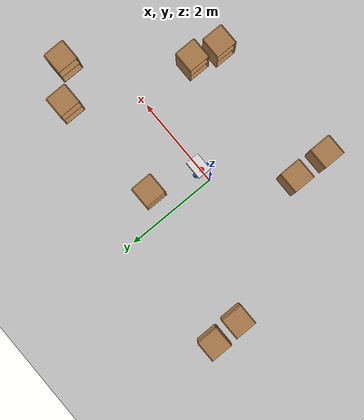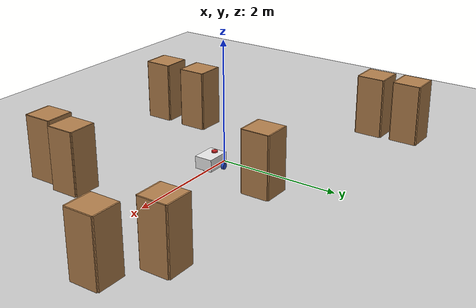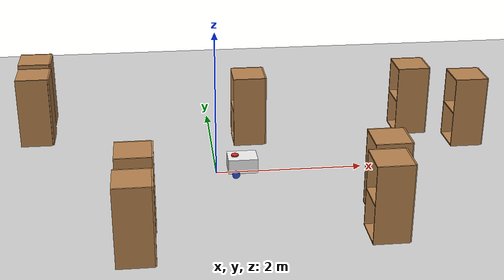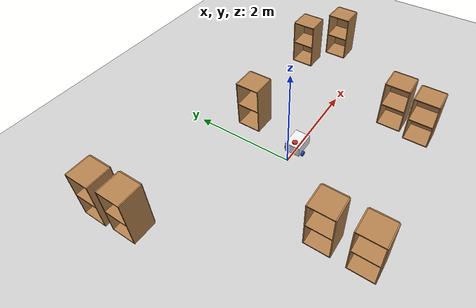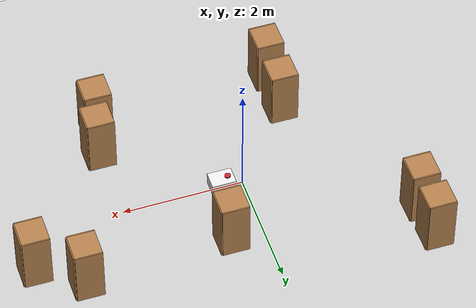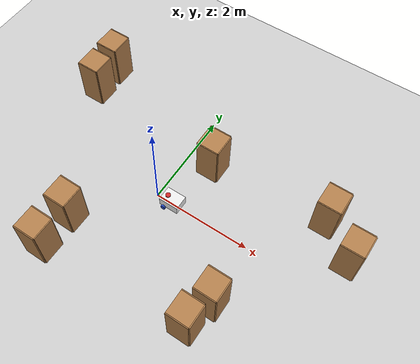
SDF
<sdf version="1.7">
 <world name="default">
  <light name="sun" type="directional">
   <pose>0 0 10 0 -0 0</pose>
   <diffuse>0.8 0.8 0.8 1</diffuse>
   <specular>0.2 0.2 0.2 1</specular>
   <attenuation>
    <range>1000</range>
    <constant>0.9</constant>
    <linear>0.01</linear>
    <quadratic>0.001</quadratic>
   </attenuation>
   <direction>-0.5 0.1 -0.9</direction>
   <spot><inner_angle>0</inner_angle><outer_angle>0</outer_angle><falloff>0</falloff></spot>
  </light>
  <model name="ground_plane">
   <static>1</static>
   <link name="link">
    <collision name="collision">
     <geometry><plane><normal>0 0 1</normal><size>100 100</size></plane></geometry>
     <surface>
      <contact><collide_bitmask>65535</collide_bitmask></contact>
      <friction><ode><mu>100</mu><mu2>50</mu2></ode></friction>
     </surface>
    </collision>
    <visual name="visual">
     <cast_shadows>0</cast_shadows>
     <geometry><plane><normal>0 0 1</normal><size>100 100</size></plane></geometry>
     <material>
      <script><uri>file://media/materials/scripts/gazebo.material</uri><name>Gazebo/Grey</name></script>
     </material>
    </visual>
   </link>
  </model>
  <gravity>0 0 -9.8</gravity>
  <magnetic_field>6e-06 2.3e-05 -4.2e-05</magnetic_field>
  <atmosphere type="adiabatic"/>
  <physics type="ode">
   <max_step_size>0.001</max_step_size>
   <real_time_factor>1</real_time_factor>
   <real_time_update_rate>1000</real_time_update_rate>
  </physics>
  <scene><ambient>0.4 0.4 0.4 1</ambient><background>0.7 0.7 0.7 1</background><shadows>1</shadows></scene>
  <spherical_coordinates>
   <surface_model>EARTH_WGS84</surface_model>
   <latitude_deg>0</latitude_deg>
   <longitude_deg>0</longitude_deg>
   <elevation>0</elevation>
   <heading_deg>0</heading_deg>
  </spherical_coordinates>
  <model name="my_bot">
   <link name="base_link">
    <inertial>
     <pose>0.104286 0 0.1 0 -0 0</pose>
     <mass>0.7</mass>
     <inertia>
      <ixx>0.0075925</ixx>
      <ixy>0</ixy>
      <ixz>0.0023</ixz>
      <iyy>0.0131863</iyy>
      <iyz>0</iyz>
      <izz>0.0133188</izz>
     </inertia>
    </inertial>
    <collision name="base_link_fixed_joint_lump__chassis_collision">
     <pose>0.1 0 0.1 0 -0 0</pose>
     <geometry><box><size>0.4 0.3 0.2</size></box></geometry>
    </collision>
    <collision name="base_link_fixed_joint_lump__caster_wheel_collision_1">
     <pose>0.23 0 0 0 -0 0</pose>
     <geometry><sphere><radius>0.05</radius></sphere></geometry>
     <surface><friction><ode><mu>0.001</mu><mu2>0.001</mu2></ode></friction></surface>
    </collision>
    <collision name="base_link_fixed_joint_lump__laser_frame_collision_2">
     <pose>0 0 0.2 0 -0 0</pose>
     <geometry><cylinder><length>0.04</length><radius>0.05</radius></cylinder></geometry>
    </collision>
    <visual name="base_link_fixed_joint_lump__chassis_visual">
     <pose>0.1 0 0.1 0 -0 0</pose>
     <geometry><box><size>0.4 0.3 0.2</size></box></geometry>
     <material>
      <script><name>Gazebo/White</name><uri>file://media/materials/scripts/gazebo.material</uri></script>
     </material>
    </visual>
    <visual name="base_link_fixed_joint_lump__caster_wheel_visual_1">
     <pose>0.23 0 0 0 -0 0</pose>
     <geometry><sphere><radius>0.05</radius></sphere></geometry>
     <material>
      <script><name>Gazebo/Black</name><uri>file://media/materials/scripts/gazebo.material</uri></script>
     </material>
    </visual>
    <visual name="base_link_fixed_joint_lump__laser_frame_visual_2">
     <pose>0 0 0.2 0 -0 0</pose>
     <geometry><cylinder><length>0.04</length><radius>0.05</radius></cylinder></geometry>
     <material>
      <script><name>Gazebo/Red</name><uri>file://media/materials/scripts/gazebo.material</uri></script>
     </material>
    </visual>
    <sensor name="laser" type="ray">
     <visualize>1</visualize>
     <update_rate>10</update_rate>
     <ray>
      <scan>
       <horizontal>
        <samples>360</samples>
        <min_angle>-3.14</min_angle>
        <max_angle>3.14</max_angle>
        <resolution>1</resolution>
       </horizontal>
       <vertical><samples>1</samples><min_angle>0</min_angle><max_angle>0</max_angle></vertical>
      </scan>
      <range><min>0.3</min><max>12</max></range>
     </ray>
     <plugin name="laser_controller" filename="libgazebo_ros_ray_sensor.so">
      <ros><argument>~/out:=scan</argument></ros>
      <output_type>sensor_msgs/LaserScan</output_type>
      <frame_name>laser_frame</frame_name>
     </plugin>
     <pose>0 0 0.2 0 -0 0</pose>
    </sensor>
   </link>
   <joint name="left_wheel_joint" type="revolute">
    <pose relative_to="base_link">0 0.175 0 -1.5708 0 0</pose>
    <parent>base_link</parent>
    <child>left_wheel</child>
    <axis>
     <xyz>0 0 1</xyz>
     <limit><lower>-1e+16</lower><upper>1e+16</upper></limit>
     <dynamics><spring_reference>0</spring_reference><spring_stiffness>0</spring_stiffness></dynamics>
    </axis>
   </joint>
   <link name="left_wheel">
    <pose relative_to="left_wheel_joint">0 0 0 0 -0 0</pose>
    <inertial>
     <mass>0.1</mass>
     <inertia>
      <ixx>7.58333e-05</ixx>
      <ixy>0</ixy>
      <ixz>0</ixz>
      <iyy>7.58333e-05</iyy>
      <iyz>0</iyz>
      <izz>0.000125</izz>
     </inertia>
    </inertial>
    <collision name="left_wheel_collision">
     <geometry><cylinder><length>0.04</length><radius>0.05</radius></cylinder></geometry>
    </collision>
    <visual name="left_wheel_visual">
     <geometry><cylinder><length>0.04</length><radius>0.05</radius></cylinder></geometry>
     <material>
      <script><name>Gazebo/Blue</name><uri>file://media/materials/scripts/gazebo.material</uri></script>
     </material>
    </visual>
   </link>
   <joint name="right_wheel_joint" type="revolute">
    <pose relative_to="base_link">0 -0.175 0 1.5708 -0 0</pose>
    <parent>base_link</parent>
    <child>right_wheel</child>
    <axis>
     <xyz>0 0 -1</xyz>
     <limit><lower>-1e+16</lower><upper>1e+16</upper></limit>
     <dynamics><spring_reference>0</spring_reference><spring_stiffness>0</spring_stiffness></dynamics>
    </axis>
   </joint>
   <link name="right_wheel">
    <pose relative_to="right_wheel_joint">0 0 0 0 -0 0</pose>
    <inertial>
     <mass>0.1</mass>
     <inertia>
      <ixx>7.58333e-05</ixx>
      <ixy>0</ixy>
      <ixz>0</ixz>
      <iyy>7.58333e-05</iyy>
      <iyz>0</iyz>
      <izz>0.000125</izz>
     </inertia>
    </inertial>
    <collision name="right_wheel_collision">
     <geometry><cylinder><length>0.04</length><radius>0.05</radius></cylinder></geometry>
    </collision>
    <visual name="right_wheel_visual">
     <geometry><cylinder><length>0.04</length><radius>0.05</radius></cylinder></geometry>
     <material>
      <script><name>Gazebo/Blue</name><uri>file://media/materials/scripts/gazebo.material</uri></script>
     </material>
    </visual>
   </link>
   <static>0</static>
   <plugin name="diff_drive" filename="libgazebo_ros_diff_drive.so">
    <left_joint>left_wheel_joint</left_joint>
    <right_joint>right_wheel_joint</right_joint>
    <wheel_separation>0.35</wheel_separation>
    <wheel_diameter>0.1</wheel_diameter>
    <max_wheel_torque>200</max_wheel_torque>
    <max_wheel_acceleration>10.0</max_wheel_acceleration>
    <odometry_frame>odom</odometry_frame>
    <robot_base_frame>base_link</robot_base_frame>
    <publish_odom>1</publish_odom>
    <publish_odom_tf>1</publish_odom_tf>
    <publish_wheel_tf>1</publish_wheel_tf>
   </plugin>
   <pose>0.252259 -0.000147 0.05 1e-06 1.2e-05 0.000824</pose>
  </model>
  <model name="cabinet">
   <static>1</static>
   <link name="cabinet_bottom_plate">
    <inertial>
     <pose>0 0 -1 0 -0 0</pose>
     <inertia><ixx>2.05</ixx><ixy>0</ixy><ixz>0</ixz><iyy>2.05</iyy><iyz>0</iyz><izz>2.05</izz></inertia>
     <mass>25</mass>
    </inertial>
    <collision name="cabinet_bottom_plate_geom">
     <pose>0 0 0.01 0 -0 0</pose>
     <geometry><box><size>0.45 0.45 0.02</size></box></geometry>
    </collision>
    <visual name="cabinet_bottom_plate_geom_visual">
     <pose>0 0 0.01 0 -0 0</pose>
     <geometry><box><size>0.45 0.45 0.02</size></box></geometry>
     <material>
      <script><uri>file://media/materials/scripts/gazebo.material</uri><name>Gazebo/Wood</name></script>
     </material>
    </visual>
    <collision name="cabinet_bottom_plate_geom_cabinet_back_plate">
     <pose>0.235 0 0.51 0 -0 0</pose>
     <geometry><box><size>0.02 0.45 1.02</size></box></geometry>
    </collision>
    <visual name="cabinet_bottom_plate_geom_cabinet_back_plate_visual">
     <pose>0.235 0 0.51 0 -0 0</pose>
     <geometry><box><size>0.02 0.45 1.02</size></box></geometry>
     <material>
      <script><uri>file://media/materials/scripts/gazebo.material</uri><name>Gazebo/Wood</name></script>
     </material>
    </visual>
    <collision name="cabinet_bottom_plate_geom_cabinet_left_plate">
     <pose>0 0.235 0.51 0 -0 0</pose>
     <geometry><box><size>0.45 0.02 1.02</size></box></geometry>
    </collision>
    <visual name="cabinet_bottom_plate_geom_cabinet_left_plate_visual">
     <pose>0 0.235 0.51 0 -0 0</pose>
     <geometry><box><size>0.45 0.02 1.02</size></box></geometry>
     <material>
      <script><uri>file://media/materials/scripts/gazebo.material</uri><name>Gazebo/Wood</name></script>
     </material>
    </visual>
    <collision name="cabinet_bottom_plate_geom_cabinet_middle_plate">
     <pose>0 0 0.51 0 -0 0</pose>
     <geometry><box><size>0.45 0.45 0.02</size></box></geometry>
    </collision>
    <visual name="cabinet_bottom_plate_geom_cabinet_middle_plate_visual">
     <pose>0 0 0.51 0 -0 0</pose>
     <geometry><box><size>0.45 0.45 0.02</size></box></geometry>
     <material>
      <script><uri>file://media/materials/scripts/gazebo.material</uri><name>Gazebo/Wood</name></script>
     </material>
    </visual>
    <collision name="cabinet_bottom_plate_geom_cabinet_right_plate">
     <pose>0 -0.235 0.51 0 -0 0</pose>
     <geometry><box><size>0.45 0.02 1.02</size></box></geometry>
    </collision>
    <visual name="cabinet_bottom_plate_geom_cabinet_right_plate_visual">
     <pose>0 -0.235 0.51 0 -0 0</pose>
     <geometry><box><size>0.45 0.02 1.02</size></box></geometry>
     <material>
      <script><uri>file://media/materials/scripts/gazebo.material</uri><name>Gazebo/Wood</name></script>
     </material>
    </visual>
    <collision name="cabinet_bottom_plate_geom_cabinet_top_plate">
     <pose>0 0 1.01 0 -0 0</pose>
     <geometry><box><size>0.45 0.45 0.02</size></box></geometry>
    </collision>
    <visual name="cabinet_bottom_plate_geom_cabinet_top_plate_visual">
     <pose>0 0 1.01 0 -0 0</pose>
     <geometry><box><size>0.45 0.45 0.02</size></box></geometry>
     <material>
      <script><uri>file://media/materials/scripts/gazebo.material</uri><name>Gazebo/Wood</name></script>
     </material>
    </visual>
   </link>
   <pose>-1.08561 -1.30221 0 0 -0 0</pose>
  </model>
  <model name="cabinet_0">
   <static>1</static>
   <link name="cabinet_bottom_plate">
    <inertial>
     <pose>0 0 -1 0 -0 0</pose>
     <inertia><ixx>2.05</ixx><ixy>0</ixy><ixz>0</ixz><iyy>2.05</iyy><iyz>0</iyz><izz>2.05</izz></inertia>
     <mass>25</mass>
    </inertial>
    <collision name="cabinet_bottom_plate_geom">
     <pose>0 0 0.01 0 -0 0</pose>
     <geometry><box><size>0.45 0.45 0.02</size></box></geometry>
    </collision>
    <visual name="cabinet_bottom_plate_geom_visual">
     <pose>0 0 0.01 0 -0 0</pose>
     <geometry><box><size>0.45 0.45 0.02</size></box></geometry>
     <material>
      <script><uri>file://media/materials/scripts/gazebo.material</uri><name>Gazebo/Wood</name></script>
     </material>
    </visual>
    <collision name="cabinet_bottom_plate_geom_cabinet_back_plate">
     <pose>0.235 0 0.51 0 -0 0</pose>
     <geometry><box><size>0.02 0.45 1.02</size></box></geometry>
    </collision>
    <visual name="cabinet_bottom_plate_geom_cabinet_back_plate_visual">
     <pose>0.235 0 0.51 0 -0 0</pose>
     <geometry><box><size>0.02 0.45 1.02</size></box></geometry>
     <material>
      <script><uri>file://media/materials/scripts/gazebo.material</uri><name>Gazebo/Wood</name></script>
     </material>
    </visual>
    <collision name="cabinet_bottom_plate_geom_cabinet_left_plate">
     <pose>0 0.235 0.51 0 -0 0</pose>
     <geometry><box><size>0.45 0.02 1.02</size></box></geometry>
    </collision>
    <visual name="cabinet_bottom_plate_geom_cabinet_left_plate_visual">
     <pose>0 0.235 0.51 0 -0 0</pose>
     <geometry><box><size>0.45 0.02 1.02</size></box></geometry>
     <material>
      <script><uri>file://media/materials/scripts/gazebo.material</uri><name>Gazebo/Wood</name></script>
     </material>
    </visual>
    <collision name="cabinet_bottom_plate_geom_cabinet_middle_plate">
     <pose>0 0 0.51 0 -0 0</pose>
     <geometry><box><size>0.45 0.45 0.02</size></box></geometry>
    </collision>
    <visual name="cabinet_bottom_plate_geom_cabinet_middle_plate_visual">
     <pose>0 0 0.51 0 -0 0</pose>
     <geometry><box><size>0.45 0.45 0.02</size></box></geometry>
     <material>
      <script><uri>file://media/materials/scripts/gazebo.material</uri><name>Gazebo/Wood</name></script>
     </material>
    </visual>
    <collision name="cabinet_bottom_plate_geom_cabinet_right_plate">
     <pose>0 -0.235 0.51 0 -0 0</pose>
     <geometry><box><size>0.45 0.02 1.02</size></box></geometry>
    </collision>
    <visual name="cabinet_bottom_plate_geom_cabinet_right_plate_visual">
     <pose>0 -0.235 0.51 0 -0 0</pose>
     <geometry><box><size>0.45 0.02 1.02</size></box></geometry>
     <material>
      <script><uri>file://media/materials/scripts/gazebo.material</uri><name>Gazebo/Wood</name></script>
     </material>
    </visual>
    <collision name="cabinet_bottom_plate_geom_cabinet_top_plate">
     <pose>0 0 1.01 0 -0 0</pose>
     <geometry><box><size>0.45 0.45 0.02</size></box></geometry>
    </collision>
    <visual name="cabinet_bottom_plate_geom_cabinet_top_plate_visual">
     <pose>0 0 1.01 0 -0 0</pose>
     <geometry><box><size>0.45 0.45 0.02</size></box></geometry>
     <material>
      <script><uri>file://media/materials/scripts/gazebo.material</uri><name>Gazebo/Wood</name></script>
     </material>
    </visual>
   </link>
   <pose>-1.09769 -2.05126 0 0 -0 0</pose>
  </model>
  <model name="cabinet_1">
   <static>1</static>
   <link name="cabinet_bottom_plate">
    <inertial>
     <pose>0 0 -1 0 -0 0</pose>
     <inertia><ixx>2.05</ixx><ixy>0</ixy><ixz>0</ixz><iyy>2.05</iyy><iyz>0</iyz><izz>2.05</izz></inertia>
     <mass>25</mass>
    </inertial>
    <collision name="cabinet_bottom_plate_geom">
     <pose>0 0 0.01 0 -0 0</pose>
     <geometry><box><size>0.45 0.45 0.02</size></box></geometry>
    </collision>
    <visual name="cabinet_bottom_plate_geom_visual">
     <pose>0 0 0.01 0 -0 0</pose>
     <geometry><box><size>0.45 0.45 0.02</size></box></geometry>
     <material>
      <script><uri>file://media/materials/scripts/gazebo.material</uri><name>Gazebo/Wood</name></script>
     </material>
    </visual>
    <collision name="cabinet_bottom_plate_geom_cabinet_back_plate">
     <pose>0.235 0 0.51 0 -0 0</pose>
     <geometry><box><size>0.02 0.45 1.02</size></box></geometry>
    </collision>
    <visual name="cabinet_bottom_plate_geom_cabinet_back_plate_visual">
     <pose>0.235 0 0.51 0 -0 0</pose>
     <geometry><box><size>0.02 0.45 1.02</size></box></geometry>
     <material>
      <script><uri>file://media/materials/scripts/gazebo.material</uri><name>Gazebo/Wood</name></script>
     </material>
    </visual>
    <collision name="cabinet_bottom_plate_geom_cabinet_left_plate">
     <pose>0 0.235 0.51 0 -0 0</pose>
     <geometry><box><size>0.45 0.02 1.02</size></box></geometry>
    </collision>
    <visual name="cabinet_bottom_plate_geom_cabinet_left_plate_visual">
     <pose>0 0.235 0.51 0 -0 0</pose>
     <geometry><box><size>0.45 0.02 1.02</size></box></geometry>
     <material>
      <script><uri>file://media/materials/scripts/gazebo.material</uri><name>Gazebo/Wood</name></script>
     </material>
    </visual>
    <collision name="cabinet_bottom_plate_geom_cabinet_middle_plate">
     <pose>0 0 0.51 0 -0 0</pose>
     <geometry><box><size>0.45 0.45 0.02</size></box></geometry>
    </collision>
    <visual name="cabinet_bottom_plate_geom_cabinet_middle_plate_visual">
     <pose>0 0 0.51 0 -0 0</pose>
     <geometry><box><size>0.45 0.45 0.02</size></box></geometry>
     <material>
      <script><uri>file://media/materials/scripts/gazebo.material</uri><name>Gazebo/Wood</name></script>
     </material>
    </visual>
    <collision name="cabinet_bottom_plate_geom_cabinet_right_plate">
     <pose>0 -0.235 0.51 0 -0 0</pose>
     <geometry><box><size>0.45 0.02 1.02</size></box></geometry>
    </collision>
    <visual name="cabinet_bottom_plate_geom_cabinet_right_plate_visual">
     <pose>0 -0.235 0.51 0 -0 0</pose>
     <geometry><box><size>0.45 0.02 1.02</size></box></geometry>
     <material>
      <script><uri>file://media/materials/scripts/gazebo.material</uri><name>Gazebo/Wood</name></script>
     </material>
    </visual>
    <collision name="cabinet_bottom_plate_geom_cabinet_top_plate">
     <pose>0 0 1.01 0 -0 0</pose>
     <geometry><box><size>0.45 0.45 0.02</size></box></geometry>
    </collision>
    <visual name="cabinet_bottom_plate_geom_cabinet_top_plate_visual">
     <pose>0 0 1.01 0 -0 0</pose>
     <geometry><box><size>0.45 0.45 0.02</size></box></geometry>
     <material>
      <script><uri>file://media/materials/scripts/gazebo.material</uri><name>Gazebo/Wood</name></script>
     </material>
    </visual>
   </link>
   <pose>-2.54256 2.01268 0 0 -0 0</pose>
  </model>
  <model name="cabinet_2">
   <static>1</static>
   <link name="cabinet_bottom_plate">
    <inertial>
     <pose>0 0 -1 0 -0 0</pose>
     <inertia><ixx>2.05</ixx><ixy>0</ixy><ixz>0</ixz><iyy>2.05</iyy><iyz>0</iyz><izz>2.05</izz></inertia>
     <mass>25</mass>
    </inertial>
    <collision name="cabinet_bottom_plate_geom">
     <pose>0 0 0.01 0 -0 0</pose>
     <geometry><box><size>0.45 0.45 0.02</size></box></geometry>
    </collision>
    <visual name="cabinet_bottom_plate_geom_visual">
     <pose>0 0 0.01 0 -0 0</pose>
     <geometry><box><size>0.45 0.45 0.02</size></box></geometry>
     <material>
      <script><uri>file://media/materials/scripts/gazebo.material</uri><name>Gazebo/Wood</name></script>
     </material>
    </visual>
    <collision name="cabinet_bottom_plate_geom_cabinet_back_plate">
     <pose>0.235 0 0.51 0 -0 0</pose>
     <geometry><box><size>0.02 0.45 1.02</size></box></geometry>
    </collision>
    <visual name="cabinet_bottom_plate_geom_cabinet_back_plate_visual">
     <pose>0.235 0 0.51 0 -0 0</pose>
     <geometry><box><size>0.02 0.45 1.02</size></box></geometry>
     <material>
      <script><uri>file://media/materials/scripts/gazebo.material</uri><name>Gazebo/Wood</name></script>
     </material>
    </visual>
    <collision name="cabinet_bottom_plate_geom_cabinet_left_plate">
     <pose>0 0.235 0.51 0 -0 0</pose>
     <geometry><box><size>0.45 0.02 1.02</size></box></geometry>
    </collision>
    <visual name="cabinet_bottom_plate_geom_cabinet_left_plate_visual">
     <pose>0 0.235 0.51 0 -0 0</pose>
     <geometry><box><size>0.45 0.02 1.02</size></box></geometry>
     <material>
      <script><uri>file://media/materials/scripts/gazebo.material</uri><name>Gazebo/Wood</name></script>
     </material>
    </visual>
    <collision name="cabinet_bottom_plate_geom_cabinet_middle_plate">
     <pose>0 0 0.51 0 -0 0</pose>
     <geometry><box><size>0.45 0.45 0.02</size></box></geometry>
    </collision>
    <visual name="cabinet_bottom_plate_geom_cabinet_middle_plate_visual">
     <pose>0 0 0.51 0 -0 0</pose>
     <geometry><box><size>0.45 0.45 0.02</size></box></geometry>
     <material>
      <script><uri>file://media/materials/scripts/gazebo.material</uri><name>Gazebo/Wood</name></script>
     </material>
    </visual>
    <collision name="cabinet_bottom_plate_geom_cabinet_right_plate">
     <pose>0 -0.235 0.51 0 -0 0</pose>
     <geometry><box><size>0.45 0.02 1.02</size></box></geometry>
    </collision>
    <visual name="cabinet_bottom_plate_geom_cabinet_right_plate_visual">
     <pose>0 -0.235 0.51 0 -0 0</pose>
     <geometry><box><size>0.45 0.02 1.02</size></box></geometry>
     <material>
      <script><uri>file://media/materials/scripts/gazebo.material</uri><name>Gazebo/Wood</name></script>
     </material>
    </visual>
    <collision name="cabinet_bottom_plate_geom_cabinet_top_plate">
     <pose>0 0 1.01 0 -0 0</pose>
     <geometry><box><size>0.45 0.45 0.02</size></box></geometry>
    </collision>
    <visual name="cabinet_bottom_plate_geom_cabinet_top_plate_visual">
     <pose>0 0 1.01 0 -0 0</pose>
     <geometry><box><size>0.45 0.45 0.02</size></box></geometry>
     <material>
      <script><uri>file://media/materials/scripts/gazebo.material</uri><name>Gazebo/Wood</name></script>
     </material>
    </visual>
   </link>
   <pose>-2.51486 1.38128 0 0 -0 0</pose>
  </model>
  <model name="cabinet_3">
   <static>1</static>
   <link name="cabinet_bottom_plate">
    <inertial>
     <pose>0 0 -1 0 -0 0</pose>
     <inertia><ixx>2.05</ixx><ixy>0</ixy><ixz>0</ixz><iyy>2.05</iyy><iyz>0</iyz><izz>2.05</izz></inertia>
     <mass>25</mass>
    </inertial>
    <collision name="cabinet_bottom_plate_geom">
     <pose>0 0 0.01 0 -0 0</pose>
     <geometry><box><size>0.45 0.45 0.02</size></box></geometry>
    </collision>
    <visual name="cabinet_bottom_plate_geom_visual">
     <pose>0 0 0.01 0 -0 0</pose>
     <geometry><box><size>0.45 0.45 0.02</size></box></geometry>
     <material>
      <script><uri>file://media/materials/scripts/gazebo.material</uri><name>Gazebo/Wood</name></script>
     </material>
    </visual>
    <collision name="cabinet_bottom_plate_geom_cabinet_back_plate">
     <pose>0.235 0 0.51 0 -0 0</pose>
     <geometry><box><size>0.02 0.45 1.02</size></box></geometry>
    </collision>
    <visual name="cabinet_bottom_plate_geom_cabinet_back_plate_visual">
     <pose>0.235 0 0.51 0 -0 0</pose>
     <geometry><box><size>0.02 0.45 1.02</size></box></geometry>
     <material>
      <script><uri>file://media/materials/scripts/gazebo.material</uri><name>Gazebo/Wood</name></script>
     </material>
    </visual>
    <collision name="cabinet_bottom_plate_geom_cabinet_left_plate">
     <pose>0 0.235 0.51 0 -0 0</pose>
     <geometry><box><size>0.45 0.02 1.02</size></box></geometry>
    </collision>
    <visual name="cabinet_bottom_plate_geom_cabinet_left_plate_visual">
     <pose>0 0.235 0.51 0 -0 0</pose>
     <geometry><box><size>0.45 0.02 1.02</size></box></geometry>
     <material>
      <script><uri>file://media/materials/scripts/gazebo.material</uri><name>Gazebo/Wood</name></script>
     </material>
    </visual>
    <collision name="cabinet_bottom_plate_geom_cabinet_middle_plate">
     <pose>0 0 0.51 0 -0 0</pose>
     <geometry><box><size>0.45 0.45 0.02</size></box></geometry>
    </collision>
    <visual name="cabinet_bottom_plate_geom_cabinet_middle_plate_visual">
     <pose>0 0 0.51 0 -0 0</pose>
     <geometry><box><size>0.45 0.45 0.02</size></box></geometry>
     <material>
      <script><uri>file://media/materials/scripts/gazebo.material</uri><name>Gazebo/Wood</name></script>
     </material>
    </visual>
    <collision name="cabinet_bottom_plate_geom_cabinet_right_plate">
     <pose>0 -0.235 0.51 0 -0 0</pose>
     <geometry><box><size>0.45 0.02 1.02</size></box></geometry>
    </collision>
    <visual name="cabinet_bottom_plate_geom_cabinet_right_plate_visual">
     <pose>0 -0.235 0.51 0 -0 0</pose>
     <geometry><box><size>0.45 0.02 1.02</size></box></geometry>
     <material>
      <script><uri>file://media/materials/scripts/gazebo.material</uri><name>Gazebo/Wood</name></script>
     </material>
    </visual>
    <collision name="cabinet_bottom_plate_geom_cabinet_top_plate">
     <pose>0 0 1.01 0 -0 0</pose>
     <geometry><box><size>0.45 0.45 0.02</size></box></geometry>
    </collision>
    <visual name="cabinet_bottom_plate_geom_cabinet_top_plate_visual">
     <pose>0 0 1.01 0 -0 0</pose>
     <geometry><box><size>0.45 0.45 0.02</size></box></geometry>
     <material>
      <script><uri>file://media/materials/scripts/gazebo.material</uri><name>Gazebo/Wood</name></script>
     </material>
    </visual>
   </link>
   <pose>0.547099 1.10159 0 0 -0 0</pose>
  </model>
  <model name="cabinet_4">
   <static>1</static>
   <link name="cabinet_bottom_plate">
    <inertial>
     <pose>0 0 -1 0 -0 0</pose>
     <inertia><ixx>2.05</ixx><ixy>0</ixy><ixz>0</ixz><iyy>2.05</iyy><iyz>0</iyz><izz>2.05</izz></inertia>
     <mass>25</mass>
    </inertial>
    <collision name="cabinet_bottom_plate_geom">
     <pose>0 0 0.01 0 -0 0</pose>
     <geometry><box><size>0.45 0.45 0.02</size></box></geometry>
    </collision>
    <visual name="cabinet_bottom_plate_geom_visual">
     <pose>0 0 0.01 0 -0 0</pose>
     <geometry><box><size>0.45 0.45 0.02</size></box></geometry>
     <material>
      <script><uri>file://media/materials/scripts/gazebo.material</uri><name>Gazebo/Wood</name></script>
     </material>
    </visual>
    <collision name="cabinet_bottom_plate_geom_cabinet_back_plate">
     <pose>0.235 0 0.51 0 -0 0</pose>
     <geometry><box><size>0.02 0.45 1.02</size></box></geometry>
    </collision>
    <visual name="cabinet_bottom_plate_geom_cabinet_back_plate_visual">
     <pose>0.235 0 0.51 0 -0 0</pose>
     <geometry><box><size>0.02 0.45 1.02</size></box></geometry>
     <material>
      <script><uri>file://media/materials/scripts/gazebo.material</uri><name>Gazebo/Wood</name></script>
     </material>
    </visual>
    <collision name="cabinet_bottom_plate_geom_cabinet_left_plate">
     <pose>0 0.235 0.51 0 -0 0</pose>
     <geometry><box><size>0.45 0.02 1.02</size></box></geometry>
    </collision>
    <visual name="cabinet_bottom_plate_geom_cabinet_left_plate_visual">
     <pose>0 0.235 0.51 0 -0 0</pose>
     <geometry><box><size>0.45 0.02 1.02</size></box></geometry>
     <material>
      <script><uri>file://media/materials/scripts/gazebo.material</uri><name>Gazebo/Wood</name></script>
     </material>
    </visual>
    <collision name="cabinet_bottom_plate_geom_cabinet_middle_plate">
     <pose>0 0 0.51 0 -0 0</pose>
     <geometry><box><size>0.45 0.45 0.02</size></box></geometry>
    </collision>
    <visual name="cabinet_bottom_plate_geom_cabinet_middle_plate_visual">
     <pose>0 0 0.51 0 -0 0</pose>
     <geometry><box><size>0.45 0.45 0.02</size></box></geometry>
     <material>
      <script><uri>file://media/materials/scripts/gazebo.material</uri><name>Gazebo/Wood</name></script>
     </material>
    </visual>
    <collision name="cabinet_bottom_plate_geom_cabinet_right_plate">
     <pose>0 -0.235 0.51 0 -0 0</pose>
     <geometry><box><size>0.45 0.02 1.02</size></box></geometry>
    </collision>
    <visual name="cabinet_bottom_plate_geom_cabinet_right_plate_visual">
     <pose>0 -0.235 0.51 0 -0 0</pose>
     <geometry><box><size>0.45 0.02 1.02</size></box></geometry>
     <material>
      <script><uri>file://media/materials/scripts/gazebo.material</uri><name>Gazebo/Wood</name></script>
     </material>
    </visual>
    <collision name="cabinet_bottom_plate_geom_cabinet_top_plate">
     <pose>0 0 1.01 0 -0 0</pose>
     <geometry><box><size>0.45 0.45 0.02</size></box></geometry>
    </collision>
    <visual name="cabinet_bottom_plate_geom_cabinet_top_plate_visual">
     <pose>0 0 1.01 0 -0 0</pose>
     <geometry><box><size>0.45 0.45 0.02</size></box></geometry>
     <material>
      <script><uri>file://media/materials/scripts/gazebo.material</uri><name>Gazebo/Wood</name></script>
     </material>
    </visual>
   </link>
   <pose>1.91242 -1.83784 0 0 -0 0</pose>
  </model>
  <model name="cabinet_5">
   <static>1</static>
   <link name="cabinet_bottom_plate">
    <inertial>
     <pose>0 0 -1 0 -0 0</pose>
     <inertia><ixx>2.05</ixx><ixy>0</ixy><ixz>0</ixz><iyy>2.05</iyy><iyz>0</iyz><izz>2.05</izz></inertia>
     <mass>25</mass>
    </inertial>
    <collision name="cabinet_bottom_plate_geom">
     <pose>0 0 0.01 0 -0 0</pose>
     <geometry><box><size>0.45 0.45 0.02</size></box></geometry>
    </collision>
    <visual name="cabinet_bottom_plate_geom_visual">
     <pose>0 0 0.01 0 -0 0</pose>
     <geometry><box><size>0.45 0.45 0.02</size></box></geometry>
     <material>
      <script><uri>file://media/materials/scripts/gazebo.material</uri><name>Gazebo/Wood</name></script>
     </material>
    </visual>
    <collision name="cabinet_bottom_plate_geom_cabinet_back_plate">
     <pose>0.235 0 0.51 0 -0 0</pose>
     <geometry><box><size>0.02 0.45 1.02</size></box></geometry>
    </collision>
    <visual name="cabinet_bottom_plate_geom_cabinet_back_plate_visual">
     <pose>0.235 0 0.51 0 -0 0</pose>
     <geometry><box><size>0.02 0.45 1.02</size></box></geometry>
     <material>
      <script><uri>file://media/materials/scripts/gazebo.material</uri><name>Gazebo/Wood</name></script>
     </material>
    </visual>
    <collision name="cabinet_bottom_plate_geom_cabinet_left_plate">
     <pose>0 0.235 0.51 0 -0 0</pose>
     <geometry><box><size>0.45 0.02 1.02</size></box></geometry>
    </collision>
    <visual name="cabinet_bottom_plate_geom_cabinet_left_plate_visual">
     <pose>0 0.235 0.51 0 -0 0</pose>
     <geometry><box><size>0.45 0.02 1.02</size></box></geometry>
     <material>
      <script><uri>file://media/materials/scripts/gazebo.material</uri><name>Gazebo/Wood</name></script>
     </material>
    </visual>
    <collision name="cabinet_bottom_plate_geom_cabinet_middle_plate">
     <pose>0 0 0.51 0 -0 0</pose>
     <geometry><box><size>0.45 0.45 0.02</size></box></geometry>
    </collision>
    <visual name="cabinet_bottom_plate_geom_cabinet_middle_plate_visual">
     <pose>0 0 0.51 0 -0 0</pose>
     <geometry><box><size>0.45 0.45 0.02</size></box></geometry>
     <material>
      <script><uri>file://media/materials/scripts/gazebo.material</uri><name>Gazebo/Wood</name></script>
     </material>
    </visual>
    <collision name="cabinet_bottom_plate_geom_cabinet_right_plate">
     <pose>0 -0.235 0.51 0 -0 0</pose>
     <geometry><box><size>0.45 0.02 1.02</size></box></geometry>
    </collision>
    <visual name="cabinet_bottom_plate_geom_cabinet_right_plate_visual">
     <pose>0 -0.235 0.51 0 -0 0</pose>
     <geometry><box><size>0.45 0.02 1.02</size></box></geometry>
     <material>
      <script><uri>file://media/materials/scripts/gazebo.material</uri><name>Gazebo/Wood</name></script>
     </material>
    </visual>
    <collision name="cabinet_bottom_plate_geom_cabinet_top_plate">
     <pose>0 0 1.01 0 -0 0</pose>
     <geometry><box><size>0.45 0.45 0.02</size></box></geometry>
    </collision>
    <visual name="cabinet_bottom_plate_geom_cabinet_top_plate_visual">
     <pose>0 0 1.01 0 -0 0</pose>
     <geometry><box><size>0.45 0.45 0.02</size></box></geometry>
     <material>
      <script><uri>file://media/materials/scripts/gazebo.material</uri><name>Gazebo/Wood</name></script>
     </material>
    </visual>
   </link>
   <pose>2.03757 -1.24903 0 0 -0 0</pose>
  </model>
  <model name="cabinet_6">
   <static>1</static>
   <link name="cabinet_bottom_plate">
    <inertial>
     <pose>0 0 -1 0 -0 0</pose>
     <inertia><ixx>2.05</ixx><ixy>0</ixy><ixz>0</ixz><iyy>2.05</iyy><iyz>0</iyz><izz>2.05</izz></inertia>
     <mass>25</mass>
    </inertial>
    <collision name="cabinet_bottom_plate_geom">
     <pose>0 0 0.01 0 -0 0</pose>
     <geometry><box><size>0.45 0.45 0.02</size></box></geometry>
    </collision>
    <visual name="cabinet_bottom_plate_geom_visual">
     <pose>0 0 0.01 0 -0 0</pose>
     <geometry><box><size>0.45 0.45 0.02</size></box></geometry>
     <material>
      <script><uri>file://media/materials/scripts/gazebo.material</uri><name>Gazebo/Wood</name></script>
     </material>
    </visual>
    <collision name="cabinet_bottom_plate_geom_cabinet_back_plate">
     <pose>0.235 0 0.51 0 -0 0</pose>
     <geometry><box><size>0.02 0.45 1.02</size></box></geometry>
    </collision>
    <visual name="cabinet_bottom_plate_geom_cabinet_back_plate_visual">
     <pose>0.235 0 0.51 0 -0 0</pose>
     <geometry><box><size>0.02 0.45 1.02</size></box></geometry>
     <material>
      <script><uri>file://media/materials/scripts/gazebo.material</uri><name>Gazebo/Wood</name></script>
     </material>
    </visual>
    <collision name="cabinet_bottom_plate_geom_cabinet_left_plate">
     <pose>0 0.235 0.51 0 -0 0</pose>
     <geometry><box><size>0.45 0.02 1.02</size></box></geometry>
    </collision>
    <visual name="cabinet_bottom_plate_geom_cabinet_left_plate_visual">
     <pose>0 0.235 0.51 0 -0 0</pose>
     <geometry><box><size>0.45 0.02 1.02</size></box></geometry>
     <material>
      <script><uri>file://media/materials/scripts/gazebo.material</uri><name>Gazebo/Wood</name></script>
     </material>
    </visual>
    <collision name="cabinet_bottom_plate_geom_cabinet_middle_plate">
     <pose>0 0 0.51 0 -0 0</pose>
     <geometry><box><size>0.45 0.45 0.02</size></box></geometry>
    </collision>
    <visual name="cabinet_bottom_plate_geom_cabinet_middle_plate_visual">
     <pose>0 0 0.51 0 -0 0</pose>
     <geometry><box><size>0.45 0.45 0.02</size></box></geometry>
     <material>
      <script><uri>file://media/materials/scripts/gazebo.material</uri><name>Gazebo/Wood</name></script>
     </material>
    </visual>
    <collision name="cabinet_bottom_plate_geom_cabinet_right_plate">
     <pose>0 -0.235 0.51 0 -0 0</pose>
     <geometry><box><size>0.45 0.02 1.02</size></box></geometry>
    </collision>
    <visual name="cabinet_bottom_plate_geom_cabinet_right_plate_visual">
     <pose>0 -0.235 0.51 0 -0 0</pose>
     <geometry><box><size>0.45 0.02 1.02</size></box></geometry>
     <material>
      <script><uri>file://media/materials/scripts/gazebo.material</uri><name>Gazebo/Wood</name></script>
     </material>
    </visual>
    <collision name="cabinet_bottom_plate_geom_cabinet_top_plate">
     <pose>0 0 1.01 0 -0 0</pose>
     <geometry><box><size>0.45 0.45 0.02</size></box></geometry>
    </collision>
    <visual name="cabinet_bottom_plate_geom_cabinet_top_plate_visual">
     <pose>0 0 1.01 0 -0 0</pose>
     <geometry><box><size>0.45 0.45 0.02</size></box></geometry>
     <material>
      <script><uri>file://media/materials/scripts/gazebo.material</uri><name>Gazebo/Wood</name></script>
     </material>
    </visual>
   </link>
   <pose>3.66487 0.745209 0 0 -0 0</pose>
  </model>
  <model name="cabinet_7">
   <static>1</static>
   <link name="cabinet_bottom_plate">
    <inertial>
     <pose>0 0 -1 0 -0 0</pose>
     <inertia><ixx>2.05</ixx><ixy>0</ixy><ixz>0</ixz><iyy>2.05</iyy><iyz>0</iyz><izz>2.05</izz></inertia>
     <mass>25</mass>
    </inertial>
    <collision name="cabinet_bottom_plate_geom">
     <pose>0 0 0.01 0 -0 0</pose>
     <geometry><box><size>0.45 0.45 0.02</size></box></geometry>
    </collision>
    <visual name="cabinet_bottom_plate_geom_visual">
     <pose>0 0 0.01 0 -0 0</pose>
     <geometry><box><size>0.45 0.45 0.02</size></box></geometry>
     <material>
      <script><uri>file://media/materials/scripts/gazebo.material</uri><name>Gazebo/Wood</name></script>
     </material>
    </visual>
    <collision name="cabinet_bottom_plate_geom_cabinet_back_plate">
     <pose>0.235 0 0.51 0 -0 0</pose>
     <geometry><box><size>0.02 0.45 1.02</size></box></geometry>
    </collision>
    <visual name="cabinet_bottom_plate_geom_cabinet_back_plate_visual">
     <pose>0.235 0 0.51 0 -0 0</pose>
     <geometry><box><size>0.02 0.45 1.02</size></box></geometry>
     <material>
      <script><uri>file://media/materials/scripts/gazebo.material</uri><name>Gazebo/Wood</name></script>
     </material>
    </visual>
    <collision name="cabinet_bottom_plate_geom_cabinet_left_plate">
     <pose>0 0.235 0.51 0 -0 0</pose>
     <geometry><box><size>0.45 0.02 1.02</size></box></geometry>
    </collision>
    <visual name="cabinet_bottom_plate_geom_cabinet_left_plate_visual">
     <pose>0 0.235 0.51 0 -0 0</pose>
     <geometry><box><size>0.45 0.02 1.02</size></box></geometry>
     <material>
      <script><uri>file://media/materials/scripts/gazebo.material</uri><name>Gazebo/Wood</name></script>
     </material>
    </visual>
    <collision name="cabinet_bottom_plate_geom_cabinet_middle_plate">
     <pose>0 0 0.51 0 -0 0</pose>
     <geometry><box><size>0.45 0.45 0.02</size></box></geometry>
    </collision>
    <visual name="cabinet_bottom_plate_geom_cabinet_middle_plate_visual">
     <pose>0 0 0.51 0 -0 0</pose>
     <geometry><box><size>0.45 0.45 0.02</size></box></geometry>
     <material>
      <script><uri>file://media/materials/scripts/gazebo.material</uri><name>Gazebo/Wood</name></script>
     </material>
    </visual>
    <collision name="cabinet_bottom_plate_geom_cabinet_right_plate">
     <pose>0 -0.235 0.51 0 -0 0</pose>
     <geometry><box><size>0.45 0.02 1.02</size></box></geometry>
    </collision>
    <visual name="cabinet_bottom_plate_geom_cabinet_right_plate_visual">
     <pose>0 -0.235 0.51 0 -0 0</pose>
     <geometry><box><size>0.45 0.02 1.02</size></box></geometry>
     <material>
      <script><uri>file://media/materials/scripts/gazebo.material</uri><name>Gazebo/Wood</name></script>
     </material>
    </visual>
    <collision name="cabinet_bottom_plate_geom_cabinet_top_plate">
     <pose>0 0 1.01 0 -0 0</pose>
     <geometry><box><size>0.45 0.45 0.02</size></box></geometry>
    </collision>
    <visual name="cabinet_bottom_plate_geom_cabinet_top_plate_visual">
     <pose>0 0 1.01 0 -0 0</pose>
     <geometry><box><size>0.45 0.45 0.02</size></box></geometry>
     <material>
      <script><uri>file://media/materials/scripts/gazebo.material</uri><name>Gazebo/Wood</name></script>
     </material>
    </visual>
   </link>
   <pose>2.96948 1.25952 0 0 -0 0</pose>
  </model>
 </world>
</sdf>
